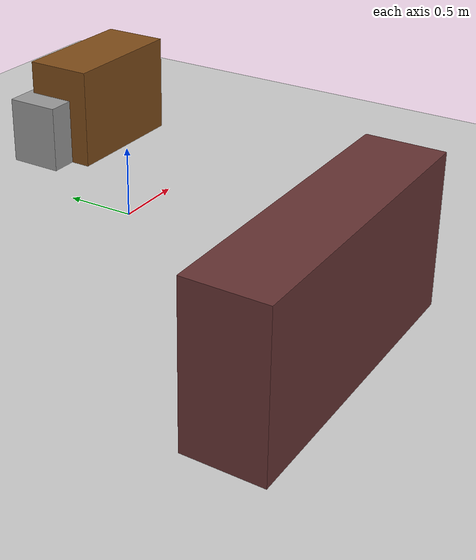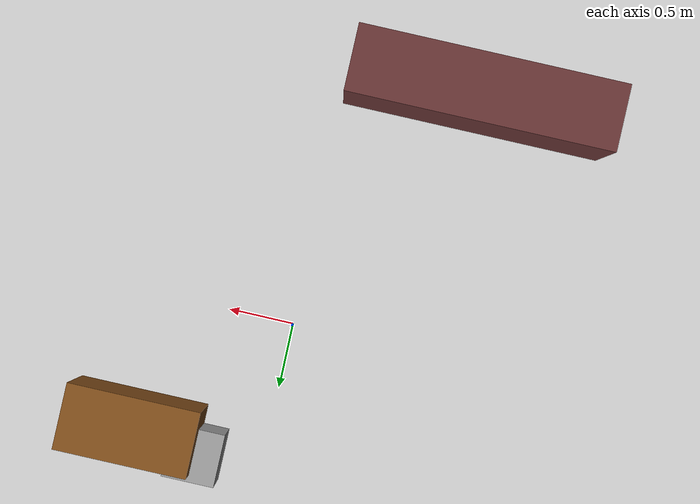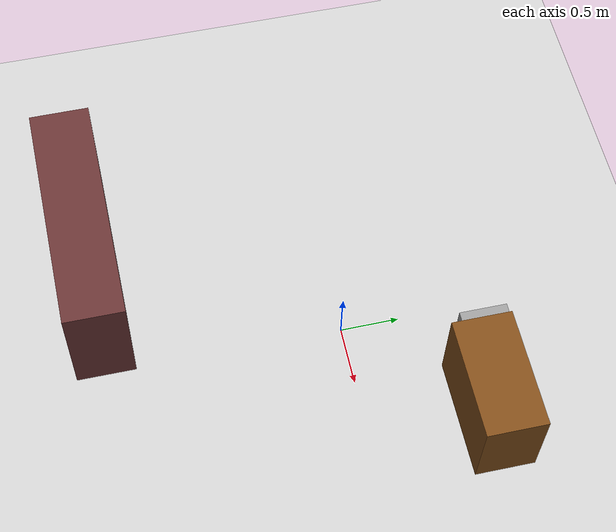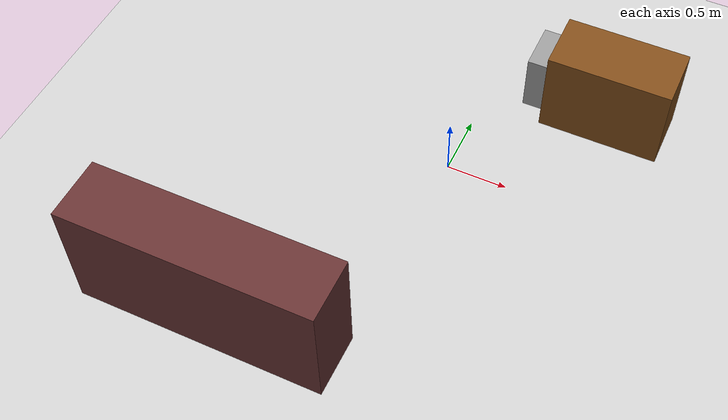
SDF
<?xml version="1.0" ?>
<sdf version="1.6">
  <world name="robot_bar_world">

    <!-- Terreno -->
    <include>
      <uri>model://ground_plane</uri>
    </include>

    <!-- Sole -->
    <include>
      <uri>model://sun</uri>
    </include>

    <!-- Tavolo semplice -->
    <model name="simple_table">
      <static>true</static>
      <pose>1 1 0.375 0 0 0</pose>
      <link name="link">
        <visual name="visual">
          <geometry>
            <box>
              <size>1.0 0.5 0.75</size>
            </box>
          </geometry>
          <material>
            <ambient>0.5 0.3 0.1 1</ambient>
            <diffuse>0.5 0.3 0.1 1</diffuse>
          </material>
        </visual>
        <collision name="collision">
          <geometry>
            <box>
              <size>1.0 0.5 0.75</size>
            </box>
          </geometry>
        </collision>
      </link>
    </model>

    <!-- Sedia semplice -->
    <model name="simple_chair">
      <static>true</static>
      <pose>0.5 1.1 0.25 0 0 0</pose>
      <link name="link">
        <visual name="visual">
          <geometry>
            <box>
              <size>0.4 0.4 0.5</size>
            </box>
          </geometry>
          <material>
            <ambient>0.6 0.6 0.6 1</ambient>
            <diffuse>0.6 0.6 0.6 1</diffuse>
          </material>
        </visual>
        <collision name="collision">
          <geometry>
            <box>
              <size>0.4 0.4 0.5</size>
            </box>
          </geometry>
        </collision>
      </link>
    </model>

    <!-- Bancone semplice -->
    <model name="simple_bar_counter">
      <static>true</static>
      <pose>-1 -2 0.5 0 0 0</pose>
      <link name="link">
        <visual name="visual">
          <geometry>
            <box>
              <size>2 0.5 1</size>
            </box>
          </geometry>
          <material>
            <ambient>0.4 0.2 0.2 1</ambient>
            <diffuse>0.4 0.2 0.2 1</diffuse>
          </material>
        </visual>
        <collision name="collision">
          <geometry>
            <box>
              <size>2 0.5 1</size>
            </box>
          </geometry>
        </collision>
      </link>
    </model>

    <!-- Luci d’atmosfera molto semplici -->
    <light name="table_light" type="point">
      <pose>0 0 3 0 0 0</pose>
      <diffuse>1 0.95 0.8 1</diffuse>
      <specular>0.2 0.2 0.2 1</specular>
      <attenuation>
        <range>5</range>
        <constant>0.5</constant>
        <linear>0.01</linear>
        <quadratic>0.001</quadratic>
      </attenuation>
    </light>

  </world>
</sdf>
